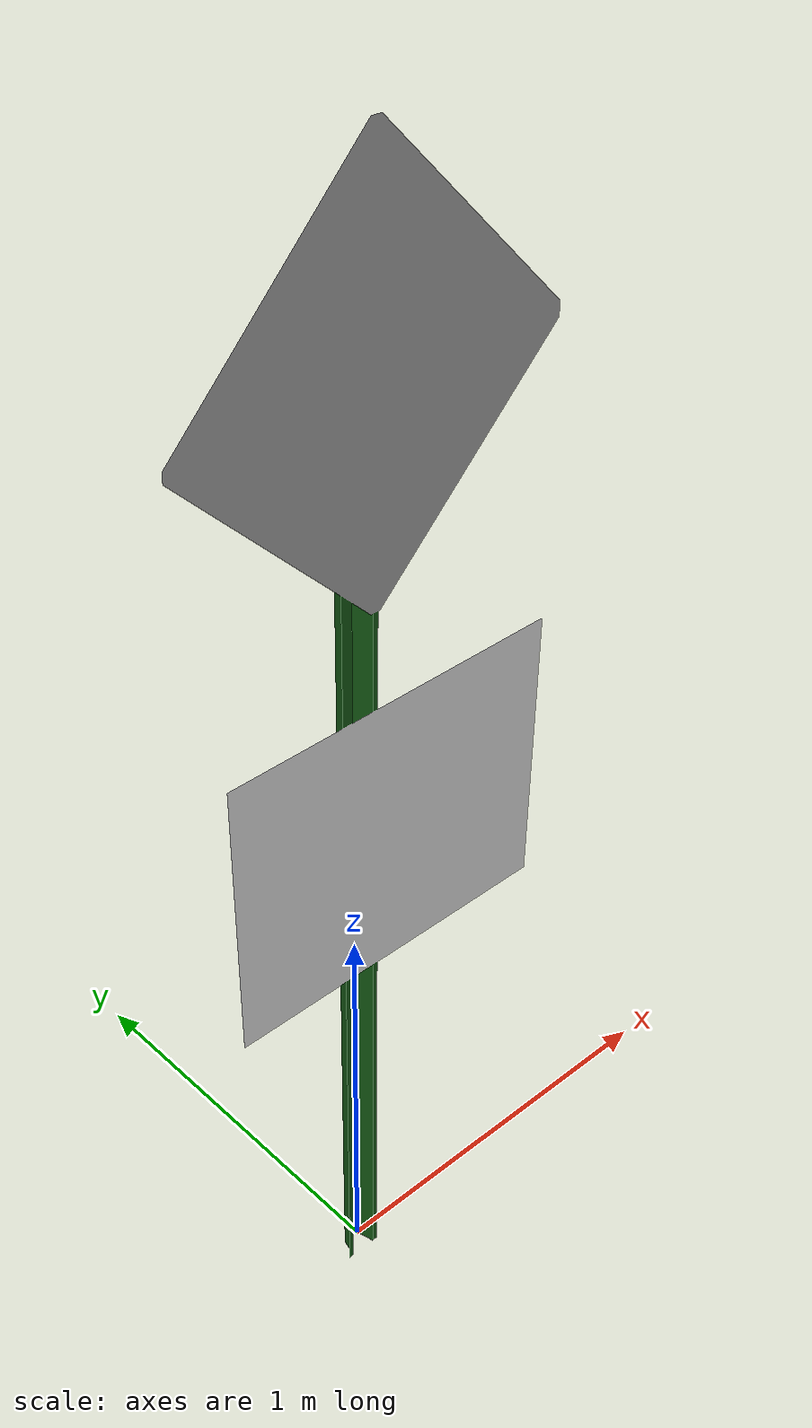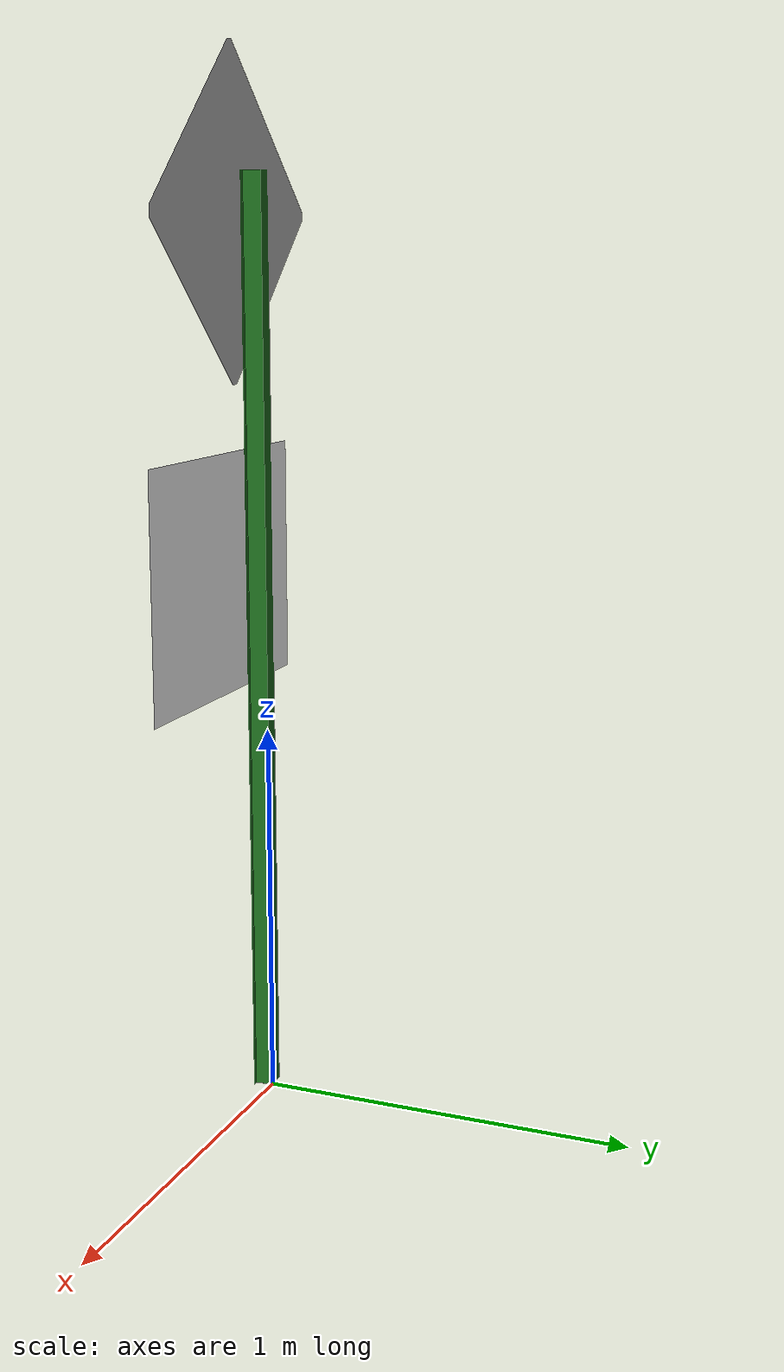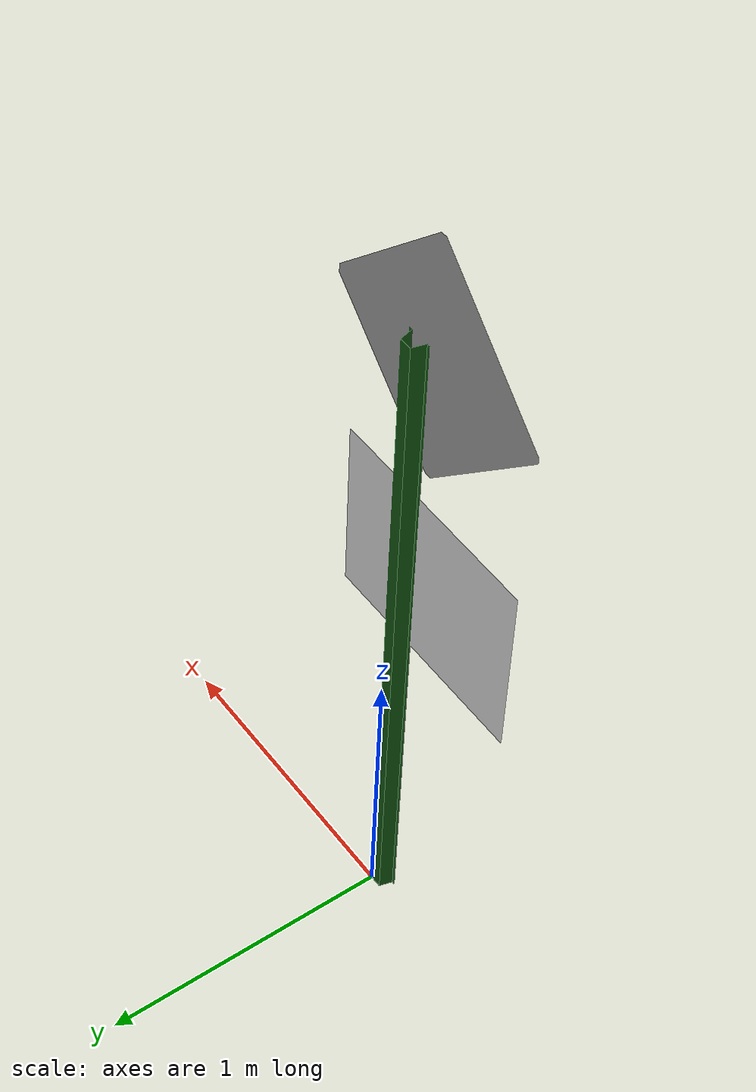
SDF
<?xml version="1.0" ?>
<sdf version="1.5">
  <model name="Intersection">
    <link name="link">
      <collision name="collision">
        <geometry>
          <mesh>
            <uri>model://intersection-sign/meshes/intersection.dae</uri>
          </mesh>
        </geometry>
      </collision>
      <visual name="visual">
        <geometry>
          <mesh>
            <uri>model://intersection-sign/meshes/intersection.dae</uri>
          </mesh>
        </geometry>
      </visual>
    </link>
  </model>
</sdf>
